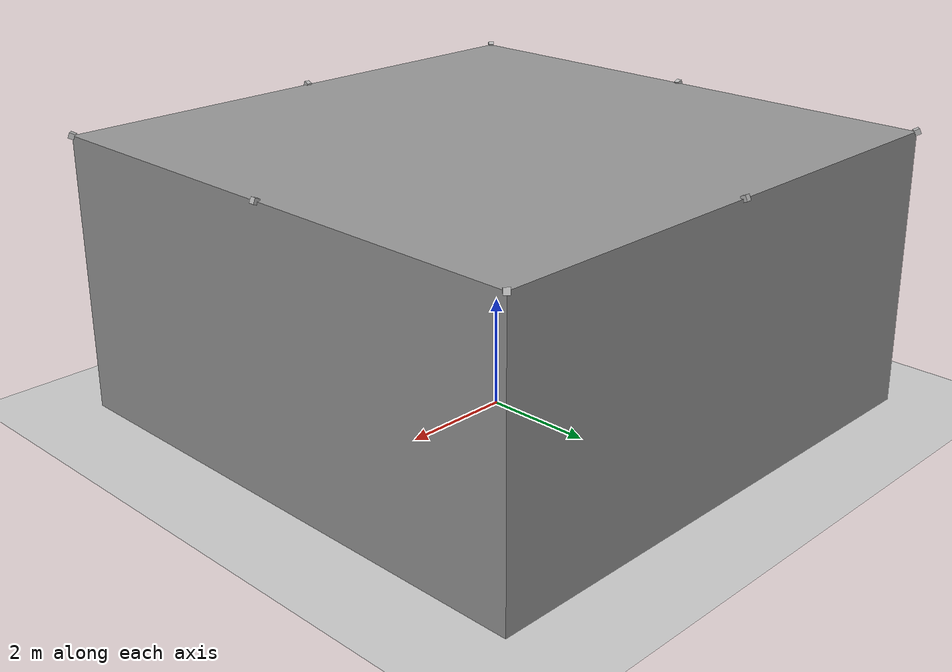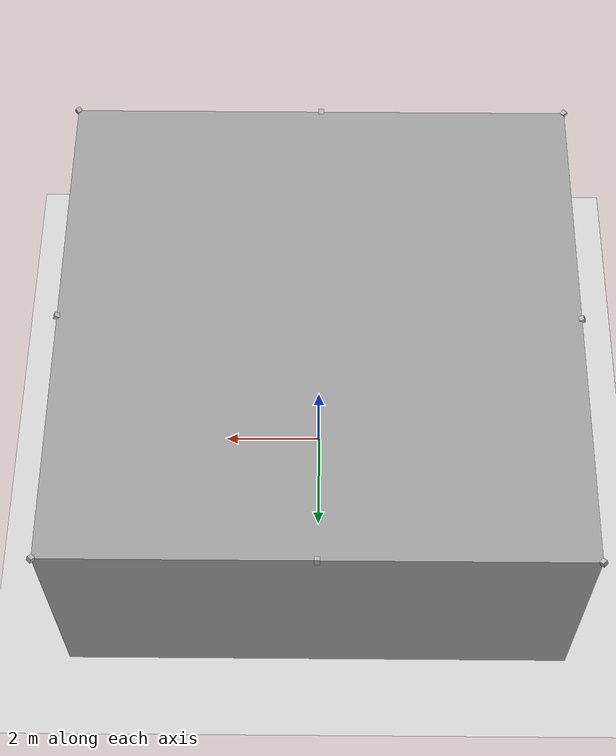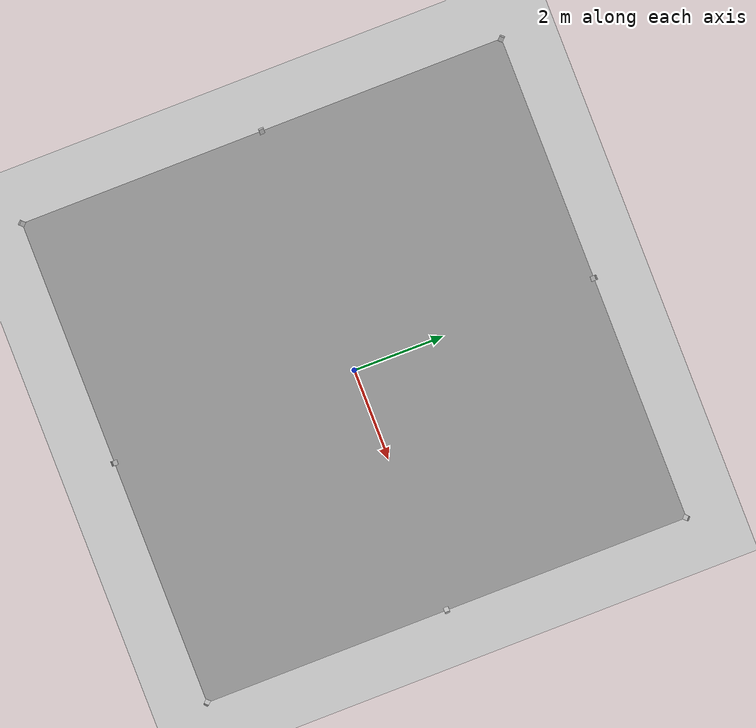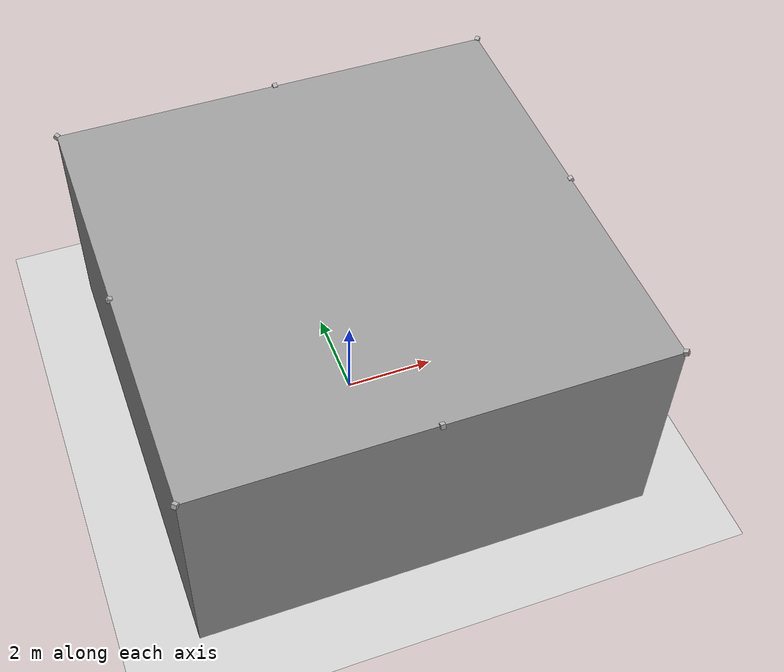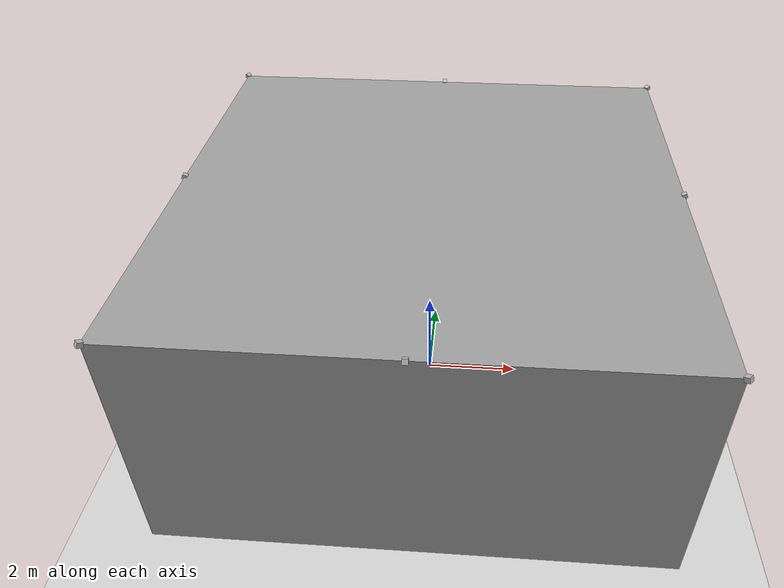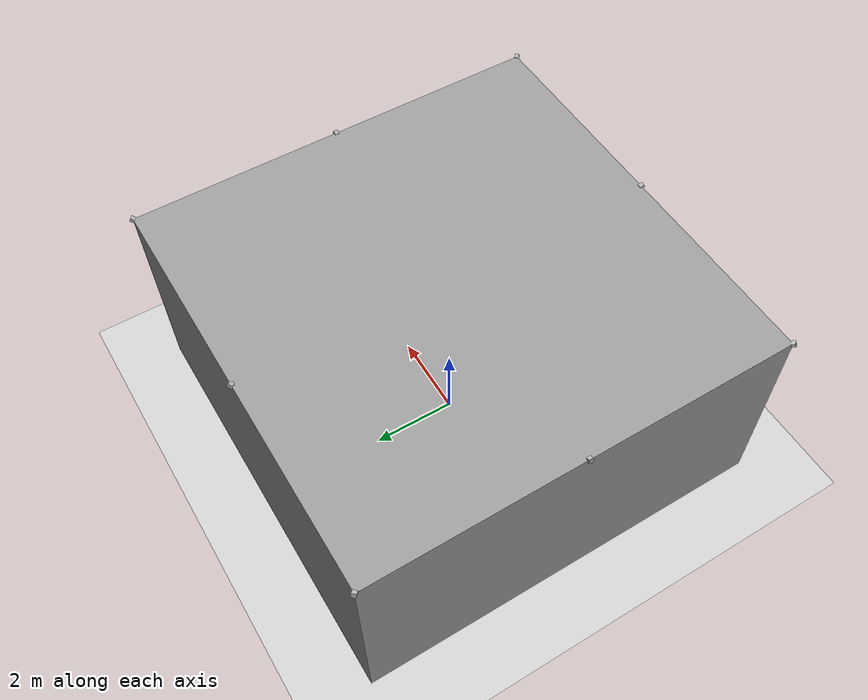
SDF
<sdf version="1.7">
 <world name="default">
  <light name="sun" type="directional">
   <pose>0 0 10 0 -0 0</pose>
   <diffuse>0.8 0.8 0.8 1</diffuse>
   <specular>0.2 0.2 0.2 1</specular>
   <attenuation>
    <range>1000</range>
    <constant>0.9</constant>
    <linear>0.01</linear>
    <quadratic>0.001</quadratic>
   </attenuation>
   <direction>-0.5 0.1 -0.9</direction>
   <spot><inner_angle>0</inner_angle><outer_angle>0</outer_angle><falloff>0</falloff></spot>
  </light>
  <model name="ground_plane">
   <static>1</static>
   <link name="link">
    <collision name="collision">
     <geometry><plane><normal>0 0 1</normal><size>100 100</size></plane></geometry>
     <surface>
      <contact><collide_bitmask>65535</collide_bitmask></contact>
      <friction><ode><mu>100</mu><mu2>50</mu2></ode></friction>
     </surface>
    </collision>
    <visual name="visual">
     <cast_shadows>0</cast_shadows>
     <geometry><plane><normal>0 0 1</normal><size>100 100</size></plane></geometry>
     <material>
      <script><uri>file://media/materials/scripts/gazebo.material</uri><name>Gazebo/Grey</name></script>
     </material>
    </visual>
   </link>
  </model>
  <gravity>0 0 -9.8</gravity>
  <magnetic_field>6e-06 2.3e-05 -4.2e-05</magnetic_field>
  <atmosphere type="adiabatic"/>
  <physics type="ode">
   <max_step_size>0.001</max_step_size>
   <real_time_factor>1</real_time_factor>
   <real_time_update_rate>1000</real_time_update_rate>
  </physics>
  <scene><ambient>0.4 0.4 0.4 1</ambient><background>0.7 0.7 0.7 1</background><shadows>1</shadows></scene>
  <spherical_coordinates>
   <surface_model>EARTH_WGS84</surface_model>
   <latitude_deg>0</latitude_deg>
   <longitude_deg>0</longitude_deg>
   <elevation>0</elevation>
   <heading_deg>0</heading_deg>
  </spherical_coordinates>
  <model name="workspace">
   <link name="link">
    <inertial>
     <mass>1</mass>
     <inertia>
      <ixx>0.166667</ixx>
      <ixy>0</ixy>
      <ixz>0</ixz>
      <iyy>0.166667</iyy>
      <iyz>0</iyz>
      <izz>0.166667</izz>
     </inertia>
    </inertial>
    <visual name="visual">
     <geometry><box><size>10 10 5</size></box></geometry>
     <material>
      <script><name>Gazebo/Grey</name><uri>file://media/materials/scripts/gazebo.material</uri></script>
      <shader type="pixel"><normal_map>__default__</normal_map></shader>
      <ambient>0.3 0.3 0.3 1</ambient>
      <diffuse>0.7 0.7 0.7 1</diffuse>
      <specular>0.01 0.01 0.01 1</specular>
      <emissive>0 0 0 1</emissive>
     </material>
    </visual>
    <collision name="collision">
     <geometry><box><size>10 10 5</size></box></geometry>
     <surface>
      <friction>
       <ode><mu>1</mu><mu2>1</mu2><fdir1>0 0 0</fdir1><slip1>0</slip1><slip2>0</slip2></ode>
       <torsional>
        <coefficient>1</coefficient>
        <patch_radius>0</patch_radius>
        <surface_radius>0</surface_radius>
        <use_patch_radius>1</use_patch_radius>
        <ode><slip>0</slip></ode>
       </torsional>
      </friction>
      <bounce><restitution_coefficient>0</restitution_coefficient><threshold>1e+06</threshold></bounce>
      <contact>
       <collide_without_contact>0</collide_without_contact>
       <collide_without_contact_bitmask>1</collide_without_contact_bitmask>
       <collide_bitmask>1</collide_bitmask>
       <ode>
        <soft_cfm>0</soft_cfm>
        <soft_erp>0.2</soft_erp>
        <kp>1e+13</kp>
        <kd>1</kd>
        <max_vel>0.01</max_vel>
        <min_depth>0</min_depth>
       </ode>
       <bullet>
        <split_impulse>1</split_impulse>
        <split_impulse_penetration_threshold>-0.01</split_impulse_penetration_threshold>
        <soft_cfm>0</soft_cfm>
        <soft_erp>0.2</soft_erp>
        <kp>1e+13</kp>
        <kd>1</kd>
       </bullet>
      </contact>
     </surface>
    </collision>
   </link>
   <static>1</static>
   <allow_auto_disable>0</allow_auto_disable>
   <pose>0 0 2.5 0 -0 0</pose>
  </model>
  <model name="camera_0">
   <link name="link">
    <inertial>
     <mass>0.1</mass>
     <inertia>
      <ixx>0.000166667</ixx>
      <iyy>0.000166667</iyy>
      <izz>0.000166667</izz>
      <ixy>0</ixy>
      <ixz>0</ixz>
      <iyz>0</iyz>
     </inertia>
    </inertial>
    <sensor name="camera" type="camera">
     <camera>
      <horizontal_fov>1.047</horizontal_fov>
      <image><width>320</width><height>240</height></image>
      <clip><near>0.1</near><far>100</far></clip>
     </camera>
     <always_on>1</always_on>
     <update_rate>30</update_rate>
     <visualize>1</visualize>
    </sensor>
    <visual name="visual">
     <geometry><box><size>0.1 0.1 0.1</size></box></geometry>
     <material><shader type="pixel"/></material>
    </visual>
    <collision name="collision">
     <geometry><box><size>0.1 0.1 0.1</size></box></geometry>
     <surface>
      <friction>
       <ode><mu>1</mu><mu2>1</mu2><fdir1>0 0 0</fdir1><slip1>0</slip1><slip2>0</slip2></ode>
       <torsional>
        <coefficient>1</coefficient>
        <patch_radius>0</patch_radius>
        <surface_radius>0</surface_radius>
        <use_patch_radius>1</use_patch_radius>
        <ode><slip>0</slip></ode>
       </torsional>
      </friction>
      <bounce><restitution_coefficient>0</restitution_coefficient><threshold>1e+06</threshold></bounce>
      <contact>
       <collide_without_contact>0</collide_without_contact>
       <collide_without_contact_bitmask>1</collide_without_contact_bitmask>
       <collide_bitmask>1</collide_bitmask>
       <ode>
        <soft_cfm>0</soft_cfm>
        <soft_erp>0.2</soft_erp>
        <kp>1e+13</kp>
        <kd>1</kd>
        <max_vel>0.01</max_vel>
        <min_depth>0</min_depth>
       </ode>
       <bullet>
        <split_impulse>1</split_impulse>
        <split_impulse_penetration_threshold>-0.01</split_impulse_penetration_threshold>
        <soft_cfm>0</soft_cfm>
        <soft_erp>0.2</soft_erp>
        <kp>1e+13</kp>
        <kd>1</kd>
       </bullet>
      </contact>
     </surface>
    </collision>
   </link>
   <static>1</static>
   <pose>5 5 5 0 0.40187 -2.35619</pose>
  </model>
  <model name="camera_1">
   <link name="link">
    <inertial>
     <mass>0.1</mass>
     <inertia>
      <ixx>0.000166667</ixx>
      <iyy>0.000166667</iyy>
      <izz>0.000166667</izz>
      <ixy>0</ixy>
      <ixz>0</ixz>
      <iyz>0</iyz>
     </inertia>
    </inertial>
    <sensor name="camera" type="camera">
     <camera>
      <horizontal_fov>1.047</horizontal_fov>
      <image><width>320</width><height>240</height></image>
      <clip><near>0.1</near><far>100</far></clip>
     </camera>
     <always_on>1</always_on>
     <update_rate>30</update_rate>
     <visualize>1</visualize>
    </sensor>
    <visual name="visual">
     <geometry><box><size>0.1 0.1 0.1</size></box></geometry>
     <material><shader type="pixel"/></material>
    </visual>
    <collision name="collision">
     <geometry><box><size>0.1 0.1 0.1</size></box></geometry>
     <surface>
      <friction>
       <ode><mu>1</mu><mu2>1</mu2><fdir1>0 0 0</fdir1><slip1>0</slip1><slip2>0</slip2></ode>
       <torsional>
        <coefficient>1</coefficient>
        <patch_radius>0</patch_radius>
        <surface_radius>0</surface_radius>
        <use_patch_radius>1</use_patch_radius>
        <ode><slip>0</slip></ode>
       </torsional>
      </friction>
      <bounce><restitution_coefficient>0</restitution_coefficient><threshold>1e+06</threshold></bounce>
      <contact>
       <collide_without_contact>0</collide_without_contact>
       <collide_without_contact_bitmask>1</collide_without_contact_bitmask>
       <collide_bitmask>1</collide_bitmask>
       <ode>
        <soft_cfm>0</soft_cfm>
        <soft_erp>0.2</soft_erp>
        <kp>1e+13</kp>
        <kd>1</kd>
        <max_vel>0.01</max_vel>
        <min_depth>0</min_depth>
       </ode>
       <bullet>
        <split_impulse>1</split_impulse>
        <split_impulse_penetration_threshold>-0.01</split_impulse_penetration_threshold>
        <soft_cfm>0</soft_cfm>
        <soft_erp>0.2</soft_erp>
        <kp>1e+13</kp>
        <kd>1</kd>
       </bullet>
      </contact>
     </surface>
    </collision>
   </link>
   <static>1</static>
   <pose>-5 5 5 0 0.401871 -0.785398</pose>
  </model>
  <model name="camera_2">
   <link name="link">
    <inertial>
     <mass>0.1</mass>
     <inertia>
      <ixx>0.000166667</ixx>
      <iyy>0.000166667</iyy>
      <izz>0.000166667</izz>
      <ixy>0</ixy>
      <ixz>0</ixz>
      <iyz>0</iyz>
     </inertia>
    </inertial>
    <sensor name="camera" type="camera">
     <camera>
      <horizontal_fov>1.047</horizontal_fov>
      <image><width>320</width><height>240</height></image>
      <clip><near>0.1</near><far>100</far></clip>
     </camera>
     <always_on>1</always_on>
     <update_rate>30</update_rate>
     <visualize>1</visualize>
    </sensor>
    <visual name="visual">
     <geometry><box><size>0.1 0.1 0.1</size></box></geometry>
     <material><shader type="pixel"/></material>
    </visual>
    <collision name="collision">
     <geometry><box><size>0.1 0.1 0.1</size></box></geometry>
     <surface>
      <friction>
       <ode><mu>1</mu><mu2>1</mu2><fdir1>0 0 0</fdir1><slip1>0</slip1><slip2>0</slip2></ode>
       <torsional>
        <coefficient>1</coefficient>
        <patch_radius>0</patch_radius>
        <surface_radius>0</surface_radius>
        <use_patch_radius>1</use_patch_radius>
        <ode><slip>0</slip></ode>
       </torsional>
      </friction>
      <bounce><restitution_coefficient>0</restitution_coefficient><threshold>1e+06</threshold></bounce>
      <contact>
       <collide_without_contact>0</collide_without_contact>
       <collide_without_contact_bitmask>1</collide_without_contact_bitmask>
       <collide_bitmask>1</collide_bitmask>
       <ode>
        <soft_cfm>0</soft_cfm>
        <soft_erp>0.2</soft_erp>
        <kp>1e+13</kp>
        <kd>1</kd>
        <max_vel>0.01</max_vel>
        <min_depth>0</min_depth>
       </ode>
       <bullet>
        <split_impulse>1</split_impulse>
        <split_impulse_penetration_threshold>-0.01</split_impulse_penetration_threshold>
        <soft_cfm>0</soft_cfm>
        <soft_erp>0.2</soft_erp>
        <kp>1e+13</kp>
        <kd>1</kd>
       </bullet>
      </contact>
     </surface>
    </collision>
   </link>
   <static>1</static>
   <pose>-5 -5 5 -0 0.401871 0.785398</pose>
  </model>
  <model name="camera_3">
   <link name="link">
    <inertial>
     <mass>0.1</mass>
     <inertia>
      <ixx>0.000166667</ixx>
      <iyy>0.000166667</iyy>
      <izz>0.000166667</izz>
      <ixy>0</ixy>
      <ixz>0</ixz>
      <iyz>0</iyz>
     </inertia>
    </inertial>
    <sensor name="camera" type="camera">
     <camera>
      <horizontal_fov>1.047</horizontal_fov>
      <image><width>320</width><height>240</height></image>
      <clip><near>0.1</near><far>100</far></clip>
     </camera>
     <always_on>1</always_on>
     <update_rate>30</update_rate>
     <visualize>1</visualize>
    </sensor>
    <visual name="visual">
     <geometry><box><size>0.1 0.1 0.1</size></box></geometry>
     <material><shader type="pixel"/></material>
    </visual>
    <collision name="collision">
     <geometry><box><size>0.1 0.1 0.1</size></box></geometry>
     <surface>
      <friction>
       <ode><mu>1</mu><mu2>1</mu2><fdir1>0 0 0</fdir1><slip1>0</slip1><slip2>0</slip2></ode>
       <torsional>
        <coefficient>1</coefficient>
        <patch_radius>0</patch_radius>
        <surface_radius>0</surface_radius>
        <use_patch_radius>1</use_patch_radius>
        <ode><slip>0</slip></ode>
       </torsional>
      </friction>
      <bounce><restitution_coefficient>0</restitution_coefficient><threshold>1e+06</threshold></bounce>
      <contact>
       <collide_without_contact>0</collide_without_contact>
       <collide_without_contact_bitmask>1</collide_without_contact_bitmask>
       <collide_bitmask>1</collide_bitmask>
       <ode>
        <soft_cfm>0</soft_cfm>
        <soft_erp>0.2</soft_erp>
        <kp>1e+13</kp>
        <kd>1</kd>
        <max_vel>0.01</max_vel>
        <min_depth>0</min_depth>
       </ode>
       <bullet>
        <split_impulse>1</split_impulse>
        <split_impulse_penetration_threshold>-0.01</split_impulse_penetration_threshold>
        <soft_cfm>0</soft_cfm>
        <soft_erp>0.2</soft_erp>
        <kp>1e+13</kp>
        <kd>1</kd>
       </bullet>
      </contact>
     </surface>
    </collision>
   </link>
   <static>1</static>
   <pose>5 -5 5 1e-06 0.401872 2.35619</pose>
  </model>
  <model name="camera_4">
   <link name="link">
    <inertial>
     <mass>0.1</mass>
     <inertia>
      <ixx>0.000166667</ixx>
      <iyy>0.000166667</iyy>
      <izz>0.000166667</izz>
      <ixy>0</ixy>
      <ixz>0</ixz>
      <iyz>0</iyz>
     </inertia>
    </inertial>
    <sensor name="camera" type="camera">
     <camera>
      <horizontal_fov>1.047</horizontal_fov>
      <image><width>320</width><height>240</height></image>
      <clip><near>0.1</near><far>100</far></clip>
     </camera>
     <always_on>1</always_on>
     <update_rate>30</update_rate>
     <visualize>1</visualize>
    </sensor>
    <visual name="visual">
     <geometry><box><size>0.1 0.1 0.1</size></box></geometry>
     <material><shader type="pixel"/></material>
    </visual>
    <collision name="collision">
     <geometry><box><size>0.1 0.1 0.1</size></box></geometry>
     <surface>
      <friction>
       <ode><mu>1</mu><mu2>1</mu2><fdir1>0 0 0</fdir1><slip1>0</slip1><slip2>0</slip2></ode>
       <torsional>
        <coefficient>1</coefficient>
        <patch_radius>0</patch_radius>
        <surface_radius>0</surface_radius>
        <use_patch_radius>1</use_patch_radius>
        <ode><slip>0</slip></ode>
       </torsional>
      </friction>
      <bounce><restitution_coefficient>0</restitution_coefficient><threshold>1e+06</threshold></bounce>
      <contact>
       <collide_without_contact>0</collide_without_contact>
       <collide_without_contact_bitmask>1</collide_without_contact_bitmask>
       <collide_bitmask>1</collide_bitmask>
       <ode>
        <soft_cfm>0</soft_cfm>
        <soft_erp>0.2</soft_erp>
        <kp>1e+13</kp>
        <kd>1</kd>
        <max_vel>0.01</max_vel>
        <min_depth>0</min_depth>
       </ode>
       <bullet>
        <split_impulse>1</split_impulse>
        <split_impulse_penetration_threshold>-0.01</split_impulse_penetration_threshold>
        <soft_cfm>0</soft_cfm>
        <soft_erp>0.2</soft_erp>
        <kp>1e+13</kp>
        <kd>1</kd>
       </bullet>
      </contact>
     </surface>
    </collision>
   </link>
   <static>1</static>
   <pose>5 0 5 0 0.40187 3.1415</pose>
  </model>
  <model name="camera_5">
   <link name="link">
    <inertial>
     <mass>0.1</mass>
     <inertia>
      <ixx>0.000166667</ixx>
      <iyy>0.000166667</iyy>
      <izz>0.000166667</izz>
      <ixy>0</ixy>
      <ixz>0</ixz>
      <iyz>0</iyz>
     </inertia>
    </inertial>
    <sensor name="camera" type="camera">
     <camera>
      <horizontal_fov>1.047</horizontal_fov>
      <image><width>320</width><height>240</height></image>
      <clip><near>0.1</near><far>100</far></clip>
     </camera>
     <always_on>1</always_on>
     <update_rate>30</update_rate>
     <visualize>1</visualize>
    </sensor>
    <visual name="visual">
     <geometry><box><size>0.1 0.1 0.1</size></box></geometry>
     <material><shader type="pixel"/></material>
    </visual>
    <collision name="collision">
     <geometry><box><size>0.1 0.1 0.1</size></box></geometry>
     <surface>
      <friction>
       <ode><mu>1</mu><mu2>1</mu2><fdir1>0 0 0</fdir1><slip1>0</slip1><slip2>0</slip2></ode>
       <torsional>
        <coefficient>1</coefficient>
        <patch_radius>0</patch_radius>
        <surface_radius>0</surface_radius>
        <use_patch_radius>1</use_patch_radius>
        <ode><slip>0</slip></ode>
       </torsional>
      </friction>
      <bounce><restitution_coefficient>0</restitution_coefficient><threshold>1e+06</threshold></bounce>
      <contact>
       <collide_without_contact>0</collide_without_contact>
       <collide_without_contact_bitmask>1</collide_without_contact_bitmask>
       <collide_bitmask>1</collide_bitmask>
       <ode>
        <soft_cfm>0</soft_cfm>
        <soft_erp>0.2</soft_erp>
        <kp>1e+13</kp>
        <kd>1</kd>
        <max_vel>0.01</max_vel>
        <min_depth>0</min_depth>
       </ode>
       <bullet>
        <split_impulse>1</split_impulse>
        <split_impulse_penetration_threshold>-0.01</split_impulse_penetration_threshold>
        <soft_cfm>0</soft_cfm>
        <soft_erp>0.2</soft_erp>
        <kp>1e+13</kp>
        <kd>1</kd>
       </bullet>
      </contact>
     </surface>
    </collision>
   </link>
   <static>1</static>
   <pose>-5 0 5 0 0.40187 0</pose>
  </model>
  <model name="camera_6">
   <link name="link">
    <inertial>
     <mass>0.1</mass>
     <inertia>
      <ixx>0.000166667</ixx>
      <iyy>0.000166667</iyy>
      <izz>0.000166667</izz>
      <ixy>0</ixy>
      <ixz>0</ixz>
      <iyz>0</iyz>
     </inertia>
    </inertial>
    <sensor name="camera" type="camera">
     <camera>
      <horizontal_fov>1.047</horizontal_fov>
      <image><width>320</width><height>240</height></image>
      <clip><near>0.1</near><far>100</far></clip>
     </camera>
     <always_on>1</always_on>
     <update_rate>30</update_rate>
     <visualize>1</visualize>
    </sensor>
    <visual name="visual">
     <geometry><box><size>0.1 0.1 0.1</size></box></geometry>
     <material><shader type="pixel"/></material>
    </visual>
    <collision name="collision">
     <geometry><box><size>0.1 0.1 0.1</size></box></geometry>
     <surface>
      <friction>
       <ode><mu>1</mu><mu2>1</mu2><fdir1>0 0 0</fdir1><slip1>0</slip1><slip2>0</slip2></ode>
       <torsional>
        <coefficient>1</coefficient>
        <patch_radius>0</patch_radius>
        <surface_radius>0</surface_radius>
        <use_patch_radius>1</use_patch_radius>
        <ode><slip>0</slip></ode>
       </torsional>
      </friction>
      <bounce><restitution_coefficient>0</restitution_coefficient><threshold>1e+06</threshold></bounce>
      <contact>
       <collide_without_contact>0</collide_without_contact>
       <collide_without_contact_bitmask>1</collide_without_contact_bitmask>
       <collide_bitmask>1</collide_bitmask>
       <ode>
        <soft_cfm>0</soft_cfm>
        <soft_erp>0.2</soft_erp>
        <kp>1e+13</kp>
        <kd>1</kd>
        <max_vel>0.01</max_vel>
        <min_depth>0</min_depth>
       </ode>
       <bullet>
        <split_impulse>1</split_impulse>
        <split_impulse_penetration_threshold>-0.01</split_impulse_penetration_threshold>
        <soft_cfm>0</soft_cfm>
        <soft_erp>0.2</soft_erp>
        <kp>1e+13</kp>
        <kd>1</kd>
       </bullet>
      </contact>
     </surface>
    </collision>
   </link>
   <static>1</static>
   <pose>0 5 5 0 0.40187 -1.5707</pose>
  </model>
  <model name="camera_7">
   <link name="link">
    <inertial>
     <mass>0.1</mass>
     <inertia>
      <ixx>0.000166667</ixx>
      <iyy>0.000166667</iyy>
      <izz>0.000166667</izz>
      <ixy>0</ixy>
      <ixz>0</ixz>
      <iyz>0</iyz>
     </inertia>
    </inertial>
    <sensor name="camera" type="camera">
     <camera>
      <horizontal_fov>1.047</horizontal_fov>
      <image><width>320</width><height>240</height></image>
      <clip><near>0.1</near><far>100</far></clip>
     </camera>
     <always_on>1</always_on>
     <update_rate>30</update_rate>
     <visualize>1</visualize>
    </sensor>
    <visual name="visual">
     <geometry><box><size>0.1 0.1 0.1</size></box></geometry>
     <material><shader type="pixel"/></material>
    </visual>
    <collision name="collision">
     <geometry><box><size>0.1 0.1 0.1</size></box></geometry>
     <surface>
      <friction>
       <ode><mu>1</mu><mu2>1</mu2><fdir1>0 0 0</fdir1><slip1>0</slip1><slip2>0</slip2></ode>
       <torsional>
        <coefficient>1</coefficient>
        <patch_radius>0</patch_radius>
        <surface_radius>0</surface_radius>
        <use_patch_radius>1</use_patch_radius>
        <ode><slip>0</slip></ode>
       </torsional>
      </friction>
      <bounce><restitution_coefficient>0</restitution_coefficient><threshold>1e+06</threshold></bounce>
      <contact>
       <collide_without_contact>0</collide_without_contact>
       <collide_without_contact_bitmask>1</collide_without_contact_bitmask>
       <collide_bitmask>1</collide_bitmask>
       <ode>
        <soft_cfm>0</soft_cfm>
        <soft_erp>0.2</soft_erp>
        <kp>1e+13</kp>
        <kd>1</kd>
        <max_vel>0.01</max_vel>
        <min_depth>0</min_depth>
       </ode>
       <bullet>
        <split_impulse>1</split_impulse>
        <split_impulse_penetration_threshold>-0.01</split_impulse_penetration_threshold>
        <soft_cfm>0</soft_cfm>
        <soft_erp>0.2</soft_erp>
        <kp>1e+13</kp>
        <kd>1</kd>
       </bullet>
      </contact>
     </surface>
    </collision>
   </link>
   <static>1</static>
   <pose>0 -5 5 -0 0.40187 1.5707</pose>
  </model>
 </world>
</sdf>
